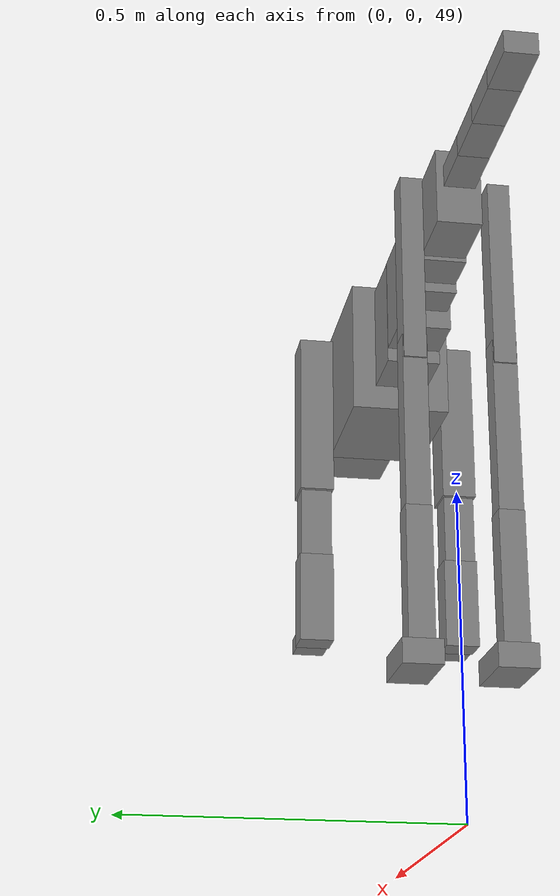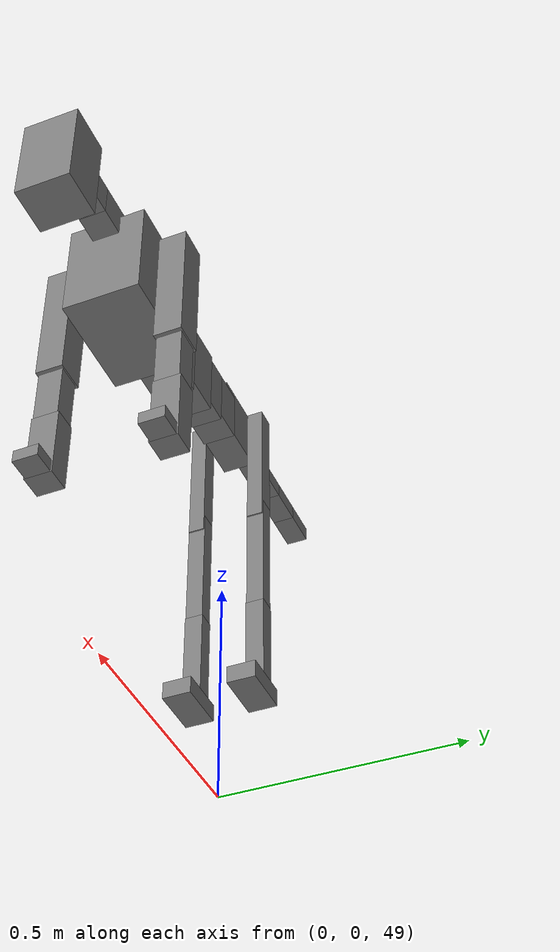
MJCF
<mujoco model="dog">

    <default>
        <joint armature="0.02" stiffness="1" damping="0.2" limited="true"/>
        <geom condim="3" friction="1 0.05 0.05" margin="0.01"/>
        <motor ctrllimited="true" ctrlrange="-1.0 1.0" forcelimited="true" gear="50"/>
    </default>

    <compiler inertiafromgeom="true" angle="radian"/>

    <option timestep="0.016" iterations="50" tolerance="1e-10" solver="Newton" jacobian="dense" cone="pyramidal"/>

    <size nconmax="20000" njmax="60000" nstack="5000000"/>
    <visual>
        <map force="0.1" zfar="30"/>
        <rgba haze="0.15 0.25 0.35 1"/>
        <quality shadowsize="2048"/>
        <global offwidth="800" offheight="800"/>
    </visual>

    <asset>
        <texture type="skybox" builtin="gradient" rgb1="0.3 0.5 0.7" rgb2="0 0 0" width="512" height="512"/>
        <texture name="texplane" type="2d" builtin="checker" rgb1=".2 .3 .4" rgb2=".1 0.15 0.2" width="512" height="512"
                 mark="cross" markrgb=".8 .8 .8"/>
        <texture name="texgeom" type="cube" builtin="flat" mark="cross" width="127" height="1278" rgb1="0.8 0.6 0.4"
                 rgb2="0.8 0.6 0.4" markrgb="1 1 1" random="0.01"/>

        <material name="matplane" reflectance="0.3" texture="texplane" texrepeat="1 1" texuniform="true"/>
        <material name="matgeom" texture="texgeom" texuniform="true" rgba="0.8 0.6 .4 1"/>
    </asset>

    <worldbody>
        <geom name="floor" pos="0 0 0" size="0 0 .25" type="plane" material="matplane" condim="3"/>

        <light directional="false" diffuse=".2 .2 .2" specular="0 0 0" pos="0 0 5" dir="0 0 -1" castshadow="false"/>
        <light mode="targetbodycom" target="torso" directional="false" diffuse=".8 .8 .8" specular="0.3 0.3 0.3"
               pos="0 0 4.0" dir="0 0 -1"/>

        <body name="root" pos="0 0 50">
            <freejoint name="root_1"/>
            <geom type="box" pos="0 0 -0.02" size="0.0774  0.0358  0.063" density="2030"/>

            <body name="spine1" pos="0.054 0 0">
                <joint name="spine1_y" axis="0 1 0" range="0 0.7" limited="true"/>
                <geom type="box" pos="0.02375 0 -0.03" size="0.04375  0.0375  0.05985" density="2030"/>

                <body name="spine2" pos="0.0612 0 0">
                    <joint name="spine2_y" axis="0 1 0" range="-0.15 0.15" limited="true"/>
                    <geom type="box" pos="0.03555  0  -0.04" size="0.04055  0.039  0.06615" density="2030"/>

                    <body name="spine3" pos="0.0730 0 0">
                        <joint name="spine3_y" axis="0 1 0" range="-0.15 0.15" limited="true"/>
                        <geom type="box" pos="0.03555  0  -0.057" size="0.04555  0.0445  0.081" density="2030"/>

                        <body name="spine4" pos="0.0780 0 0">
                            <joint name="spine4_y" axis="0 1 0" range="-0.15 0.15" limited="true"/>
                            <geom type="box" pos="0.05265  0  -0.07" size="0.05265  0.045  0.09135" density="2030"/>

                            <body name="torso" pos="0.1082 0 0">
                                <joint name="torso_y" axis="0 1 0" range="-0.15 0.15" limited="true"/>
                                <geom type="box" pos="0.11925  0  -0.085" size="0.11925  0.085  0.11745"
                                      density="2030"/>

                                <body name="neck1" pos="0.2160  0   0.0180">
                                    <joint name="neck1_y" axis="0 1 0" range="-1.2  -1" limited="true"/>
                                    <geom type="box" pos="0.0423  0  0" size="0.0423  0.03  0.036" density="2325"/>

                                    <body name="neck2" pos="0.0853  0  0">
                                        <joint name="neck2_y" axis="0 1 0" range="0.1  0" limited="true"/>
                                        <geom type="box" pos="0.0423  0  0" size="0.0423  0.03  0.036" density="2325"/>

                                        <body name="head" pos="0.0853  0  0">
                                            <joint name="head_y" axis="0 1 0" range="-0.3  -0.2" limited="true"/>
                                            <geom type="box" pos="0.0531  0  -0.055" size="0.0531  0.06  0.1044"
                                                  density="4030"/>

                                        </body>
                                    </body>
                                </body>

                                <body name="front_shoulder" pos="0.156  0   -0.0480">
                                    <joint name="front_shoulder_y" axis="0 1 0" range="-1 1.5" limited="true"/>
                                    <geom type="box" pos="0 0.13 -0.1191" size="0.0351  0.0300  0.1458" density="1158"/>
                                    <geom type="box" pos="0 -0.13 -0.1191" size="0.0351  0.0300  0.1458"
                                          density="1158"/>

                                    <body name="front_elbow" pos="0  0  -0.2382">
                                        <joint name="front_elbow_y" axis="0 1 0" range="-2 0" limited="true"/>
                                        <geom type="box" pos="0 0.13 -0.0800" size="0.0265  0.0271  0.0800"
                                              density="1081"/>
                                        <geom type="box" pos="0 -0.13 -0.0800" size="0.0265  0.0271  0.0800"
                                              density="1081"/>

                                        <body name="front_wrist" pos="0  0  -0.1600">
                                            <joint name="front_wrist_y" axis="0 1 0" range="-0.2 0" limited="true"/>
                                            <geom type="box" pos="0 0.13 -0.0658" size="0.0269  0.0299  0.0789"
                                                  density="1664"/>
                                            <geom type="box" pos="0 -0.13 -0.0658" size="0.0269  0.0299  0.0789"
                                                  density="1664"/>

                                            <body name="front_finger_end" pos="0  0  -0.1316">
                                                <joint name="front_finger_y" axis="0 1 0" range="-0.4 1"
                                                       limited="true"/>
                                                <geom type="box" pos="0.0272  0.13  0.0014"
                                                      size="0.0498  0.0272  0.0136" density="1515"/>
                                                <geom type="box" pos="0.0272  -0.13  0.0014"
                                                      size="0.0498  0.0272  0.0136" density="1515"/>

                                            </body>

                                        </body>
                                    </body>
                                </body>

                            </body>
                        </body>
                    </body>
                </body>
            </body>

            <body name="back_hip" pos="-0.03 0 -0.018">
                <joint name="back_hip_y" axis="0 1 0" range="-1.5 0.3" limited="true"/>
                <geom type="box" pos="0 0.07 -0.1315" size="0.0226  0.0177  0.1543" density="1154"/>
                <geom type="box" pos="0 -0.07 -0.1315" size="0.0226  0.0177  0.1543" density="1154"/>

                <body name="back_knee" pos="0  0  -0.2631">
                    <joint name="back_knee_y" axis="0 1 0" range="0 2.8" limited="true"/>
                    <geom type="box" pos="0 0.07 -0.1356" size="0.0193  0.0190  0.1512" density="1227"/>
                    <geom type="box" pos="0 -0.07 -0.1356" size="0.0193  0.0190  0.1512" density="1227"/>

                    <body name="back_ankle" pos="0  0  -0.2712">
                        <joint name="back_ankle_y" axis="0 1 0" range="-2.2 0" limited="true"/>
                        <geom type="box" pos="0 0.07 -0.1041" size="0.0200  0.0200  0.1154" density="1284"/>
                        <geom type="box" pos="0 -0.07 -0.1041" size="0.0200  0.0200  0.1154" density="1284"/>

                        <body name="back_toe_end" pos="0  0  -0.2083">
                            <joint name="back_toe_y" axis="0 1 0" range="-0.4 1" limited="true"/>
                            <geom type="box" pos="0.0308  0.07  -0.0040" size="0.0565  0.0308  0.0190" density="1515"/>
                            <geom type="box" pos="0.0308  -0.07  -0.0040" size="0.0565  0.0308  0.0190" density="1515"/>

                        </body>
                    </body>
                </body>
            </body>

            <body name="tail1" pos="-0.074 0 -0.006">
                <joint name="tail1_y" axis="0 1 0" range="-0.2 0.2" limited="true"/>
                <geom type="box" pos="-0.0536  0  0" size="0.045  0.025  0.0175" density="1587"/>

                <body name="tail2" pos="-0.09 0 0">
                    <joint name="tail2_y" axis="0 1 0" range="-0.2 0.2" limited="true"/>
                    <geom type="box" pos="-0.0536  0  0" size="0.045  0.025  0.0175" density="1587"/>

                    <body name="tail3" pos="-0.09 0 0">
                        <joint name="tail3_y" axis="0 1 0" range="-0.2 0.2" limited="true"/>
                        <geom type="box" pos="-0.0536  0  0" size="0.045  0.025  0.0175" density="1587"/>

                        <body name="tail4" pos="-0.09 0 0">
                            <joint name="tail4_y" axis="0 1 0" range="-0.2 0.2" limited="true"/>
                            <geom type="box" pos="-0.0536  0  0" size="0.045  0.025  0.0175" density="1587"/>

                        </body>
                    </body>
                </body>
            </body>
        </body>
    </worldbody>

    <actuator>
        <motor joint="spine1_y" forcerange="-150 150     "/>
        <motor joint="spine2_y" forcerange="-150 150     "/>
        <motor joint="spine3_y" forcerange="-150 150     "/>
        <motor joint="spine4_y" forcerange="-150 150     "/>
        <motor joint="torso_y" forcerange="-150 150     "/>
        <motor joint="neck1_y" forcerange="-100 100       "/>
        <motor joint="neck2_y" forcerange="-100 100       "/>
        <motor joint="head_y" forcerange="-150 150       "/>
        <motor joint="front_shoulder_y" forcerange="-120.05 179.93"/>
        <motor joint="front_elbow_y" forcerange="-100.78 196.00"/>
        <motor joint="front_wrist_y" forcerange="-143.07 96.20"/>
        <motor joint="front_finger_y" forcerange="-43.79 61.21"/>
        <motor joint="back_hip_y" forcerange="-231.71 204.74"/>
        <motor joint="back_knee_y" forcerange="-270.25 206.07"/>
        <motor joint="back_angle_y" forcerange="-163.02 57.53"/>
        <motor joint="back_toe_y" forcerange="-28.57 137.77"/>
        <motor joint="tail1_y" forcerange="-50 50     "/>
        <motor joint="tail2_y" forcerange="-50 50     "/>
        <motor joint="tail3_y" forcerange="-50 50     "/>
        <motor joint="tail4_y" forcerange="-50 50     "/>
    </actuator>
</mujoco>
